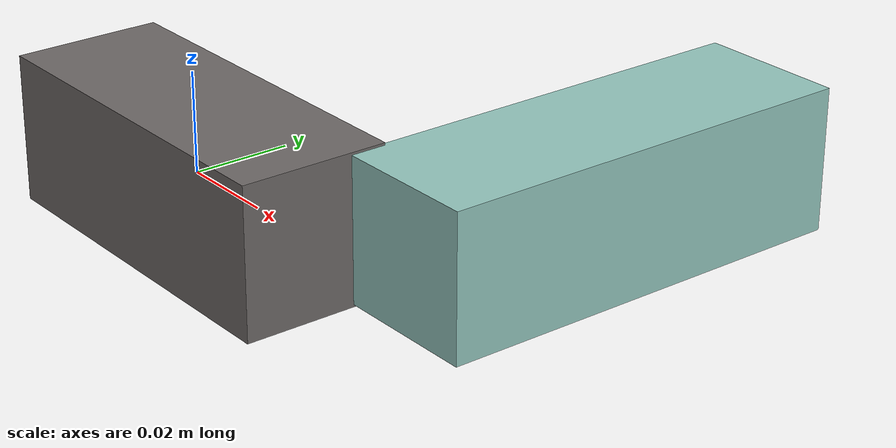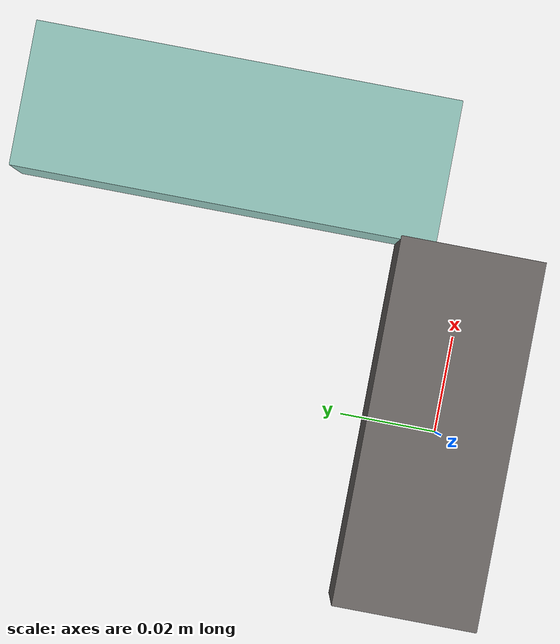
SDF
<sdf version="1.4"><world name="default"><model name="object0"><link name="link1"><pose>0 0 0 0 0 0</pose><inertial><pose>0 0 0 0 0 0</pose><mass>0.041309341257971734</mass><inertia><ixx>6.19640118869576e-06</ixx><ixy>0</ixy><iyy>2.3243607453957826e-05</iyy><ixz>0</ixz><iyz>0</iyz><izz>2.3243607453957826e-05</izz></inertia></inertial><visual name="link1_visual"><pose>0 0  0 0 0 0</pose><geometry><box><size>0.07649878010735509 0.03 0.03</size></box></geometry><material><diffuse>0.43093598484299533 0.4110215367846062 0.4035221162132764 1</diffuse></material></visual><collision><pose>0 0  0 0 0 0</pose><geometry><box><size>0.07649878010735509 0.03 0.03</size></box></geometry></collision></link><link name="link2"><pose>0.05248114821877817 0.0519380348319054 0 0 0 0</pose><inertial><pose>0 0 0 0 0 0</pose><mass>0.0477281480961081</mass><inertia><ixx>3.441593012192587e-05</ixx><ixy>0</ixy><iyy>6.9245588196103495e-06</iyy><ixz>0</ixz><iyz>0</iyz><izz>3.4650593516731735e-05</izz></inertia></inertial><visual name="link2_visual"><pose>0 0  0 0 0 0</pose><geometry><box><size>0.03 0.08838545943723723 0.028999999999999998</size></box></geometry><material><diffuse>0.5788286187021411 0.7779583352882855 0.7430271700920104 1</diffuse></material></visual><collision><pose>0 0  0 0 0 0</pose><geometry><box><size>0.03 0.08838545943723723 0.028999999999999998</size></box></geometry></collision></link><joint name="link_joint_0" type="fixed"><parent>link1</parent><child>link2</child><pose>0 0 0 0 0 0</pose><axis><xyz>0 0 1</xyz></axis></joint></model></world></sdf>
